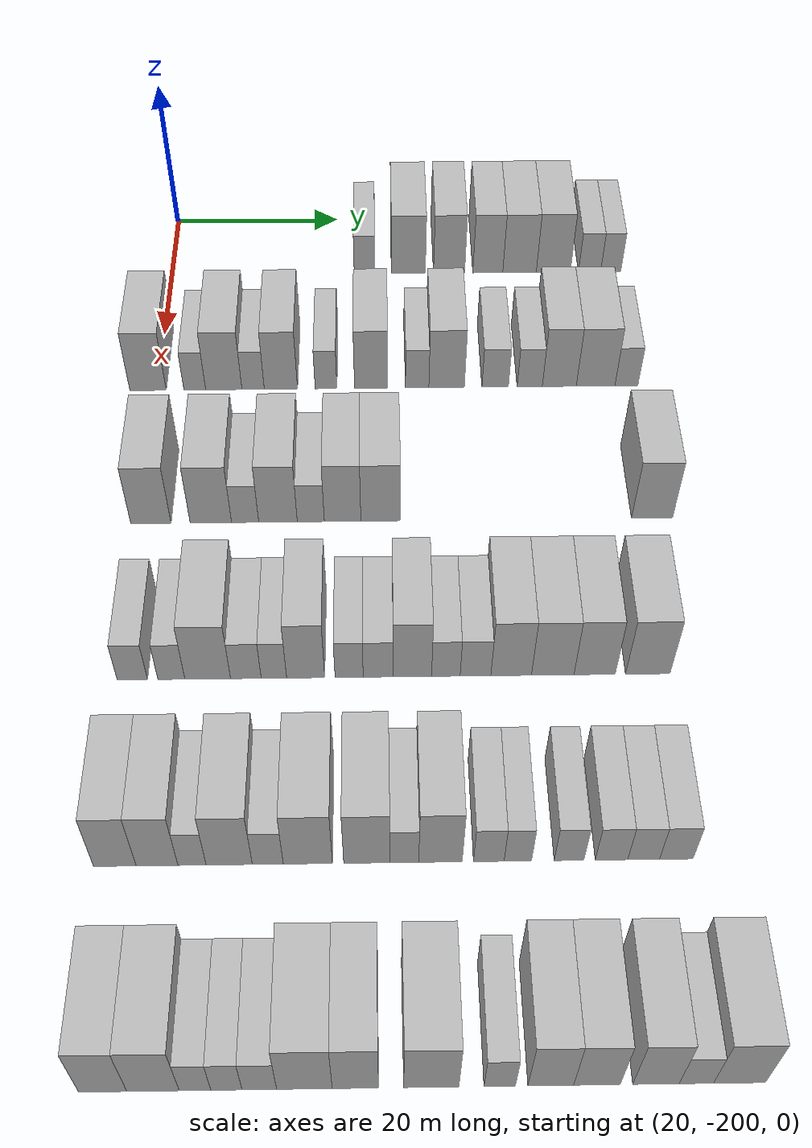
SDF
<sdf version="1.6">
 <world name="default">
  <model name="building_42">
   <static>1</static>
   <pose>25.0000 -176.5753 0 0.000000 0.000000 0.000000</pose>
   <link name="link">
    <pose>0 0 3.00 0 0 0</pose>
    <collision name="collision"><geometry><box><size>10.0000 2.5199 6.0000</size></box></geometry></collision>
    <visual name="visual">
     <cast_shadows>0</cast_shadows>
     <geometry><box><size>10.0000 2.5199 6.0000</size></box></geometry>
     <material>
      <script>
       <uri>model://HANNAS_wall/materials/scripts</uri>
       <uri>model://HANNAS_wall/materials/textures</uri>
       <name>vrc/HANNAS_wall</name>
      </script>
     </material>
    </visual>
   </link>
  </model>
  <model name="building_43">
   <static>1</static>
   <pose>25.0000 -171.2513 0 0.000000 0.000000 0.000000</pose>
   <link name="link">
    <pose>0 0 4.50 0 0 0</pose>
    <collision name="collision"><geometry><box><size>10.0000 4.1281 9.0000</size></box></geometry></collision>
    <visual name="visual">
     <cast_shadows>0</cast_shadows>
     <geometry><box><size>10.0000 4.1281 9.0000</size></box></geometry>
     <material>
      <script>
       <uri>model://HANNAS_wall/materials/scripts</uri>
       <uri>model://HANNAS_wall/materials/textures</uri>
       <name>vrc/HANNAS_wall</name>
      </script>
     </material>
    </visual>
   </link>
  </model>
  <model name="building_44">
   <static>1</static>
   <pose>25.0000 -166.2903 0 0.000000 0.000000 0.000000</pose>
   <link name="link">
    <pose>0 0 4.50 0 0 0</pose>
    <collision name="collision"><geometry><box><size>10.0000 3.7940 9.0000</size></box></geometry></collision>
    <visual name="visual">
     <cast_shadows>0</cast_shadows>
     <geometry><box><size>10.0000 3.7940 9.0000</size></box></geometry>
     <material>
      <script>
       <uri>model://HANNAS_wall/materials/scripts</uri>
       <uri>model://HANNAS_wall/materials/textures</uri>
       <name>vrc/HANNAS_wall</name>
      </script>
     </material>
    </visual>
   </link>
  </model>
  <model name="building_45">
   <static>1</static>
   <pose>25.0000 -161.5689 0 0.000000 0.000000 0.000000</pose>
   <link name="link">
    <pose>0 0 4.50 0 0 0</pose>
    <collision name="collision"><geometry><box><size>10.0000 3.6488 9.0000</size></box></geometry></collision>
    <visual name="visual">
     <cast_shadows>0</cast_shadows>
     <geometry><box><size>10.0000 3.6488 9.0000</size></box></geometry>
     <material>
      <script>
       <uri>model://HANNAS_wall/materials/scripts</uri>
       <uri>model://HANNAS_wall/materials/textures</uri>
       <name>vrc/HANNAS_wall</name>
      </script>
     </material>
    </visual>
   </link>
  </model>
  <model name="building_46">
   <static>1</static>
   <pose>25.0000 -157.6987 0 0.000000 0.000000 0.000000</pose>
   <link name="link">
    <pose>0 0 4.50 0 0 0</pose>
    <collision name="collision"><geometry><box><size>10.0000 4.0915 9.0000</size></box></geometry></collision>
    <visual name="visual">
     <cast_shadows>0</cast_shadows>
     <geometry><box><size>10.0000 4.0915 9.0000</size></box></geometry>
     <material>
      <script>
       <uri>model://HANNAS_wall/materials/scripts</uri>
       <uri>model://HANNAS_wall/materials/textures</uri>
       <name>vrc/HANNAS_wall</name>
      </script>
     </material>
    </visual>
   </link>
  </model>
  <model name="building_47">
   <static>1</static>
   <pose>25.0000 -153.5797 0 0.000000 0.000000 0.000000</pose>
   <link name="link">
    <pose>0 0 4.50 0 0 0</pose>
    <collision name="collision"><geometry><box><size>10.0000 4.1466 9.0000</size></box></geometry></collision>
    <visual name="visual">
     <cast_shadows>0</cast_shadows>
     <geometry><box><size>10.0000 4.1466 9.0000</size></box></geometry>
     <material>
      <script>
       <uri>model://HANNAS_wall/materials/scripts</uri>
       <uri>model://HANNAS_wall/materials/textures</uri>
       <name>vrc/HANNAS_wall</name>
      </script>
     </material>
    </visual>
   </link>
  </model>
  <model name="building_48">
   <static>1</static>
   <pose>25.0000 -149.1497 0 0.000000 0.000000 0.000000</pose>
   <link name="link">
    <pose>0 0 3.00 0 0 0</pose>
    <collision name="collision"><geometry><box><size>10.0000 2.7135 6.0000</size></box></geometry></collision>
    <visual name="visual">
     <cast_shadows>0</cast_shadows>
     <geometry><box><size>10.0000 2.7135 6.0000</size></box></geometry>
     <material>
      <script>
       <uri>model://HANNAS_wall/materials/scripts</uri>
       <uri>model://HANNAS_wall/materials/textures</uri>
       <name>vrc/HANNAS_wall</name>
      </script>
     </material>
    </visual>
   </link>
  </model>
  <model name="building_49">
   <static>1</static>
   <pose>25.0000 -146.5638 0 0.000000 0.000000 0.000000</pose>
   <link name="link">
    <pose>0 0 3.00 0 0 0</pose>
    <collision name="collision"><geometry><box><size>10.0000 2.4584 6.0000</size></box></geometry></collision>
    <visual name="visual">
     <cast_shadows>0</cast_shadows>
     <geometry><box><size>10.0000 2.4584 6.0000</size></box></geometry>
     <material>
      <script>
       <uri>model://HANNAS_wall/materials/scripts</uri>
       <uri>model://HANNAS_wall/materials/textures</uri>
       <name>vrc/HANNAS_wall</name>
      </script>
     </material>
    </visual>
   </link>
  </model>
  <model name="building_201">
   <static>1</static>
   <pose>44.0000 -201.1023 0 0.000000 0.000000 0.000000</pose>
   <link name="link">
    <pose>0 0 4.50 0 0 0</pose>
    <collision name="collision"><geometry><box><size>10.0000 4.1125 9.0000</size></box></geometry></collision>
    <visual name="visual">
     <cast_shadows>0</cast_shadows>
     <geometry><box><size>10.0000 4.1125 9.0000</size></box></geometry>
     <material>
      <script>
       <uri>model://HANNAS_wall/materials/scripts</uri>
       <uri>model://HANNAS_wall/materials/textures</uri>
       <name>vrc/HANNAS_wall</name>
      </script>
     </material>
    </visual>
   </link>
  </model>
  <model name="building_202">
   <static>1</static>
   <pose>44.0000 -195.8199 0 0.000000 0.000000 0.000000</pose>
   <link name="link">
    <pose>0 0 3.00 0 0 0</pose>
    <collision name="collision"><geometry><box><size>10.0000 2.4524 6.0000</size></box></geometry></collision>
    <visual name="visual">
     <cast_shadows>0</cast_shadows>
     <geometry><box><size>10.0000 2.4524 6.0000</size></box></geometry>
     <material>
      <script>
       <uri>model://HANNAS_wall/materials/scripts</uri>
       <uri>model://HANNAS_wall/materials/textures</uri>
       <name>vrc/HANNAS_wall</name>
      </script>
     </material>
    </visual>
   </link>
  </model>
  <model name="building_203">
   <static>1</static>
   <pose>44.0000 -192.5403 0 0.000000 0.000000 0.000000</pose>
   <link name="link">
    <pose>0 0 4.50 0 0 0</pose>
    <collision name="collision"><geometry><box><size>10.0000 4.1068 9.0000</size></box></geometry></collision>
    <visual name="visual">
     <cast_shadows>0</cast_shadows>
     <geometry><box><size>10.0000 4.1068 9.0000</size></box></geometry>
     <material>
      <script>
       <uri>model://HANNAS_wall/materials/scripts</uri>
       <uri>model://HANNAS_wall/materials/textures</uri>
       <name>vrc/HANNAS_wall</name>
      </script>
     </material>
    </visual>
   </link>
  </model>
  <model name="building_204">
   <static>1</static>
   <pose>44.0000 -189.2242 0 0.000000 0.000000 0.000000</pose>
   <link name="link">
    <pose>0 0 3.00 0 0 0</pose>
    <collision name="collision"><geometry><box><size>10.0000 2.5254 6.0000</size></box></geometry></collision>
    <visual name="visual">
     <cast_shadows>0</cast_shadows>
     <geometry><box><size>10.0000 2.5254 6.0000</size></box></geometry>
     <material>
      <script>
       <uri>model://HANNAS_wall/materials/scripts</uri>
       <uri>model://HANNAS_wall/materials/textures</uri>
       <name>vrc/HANNAS_wall</name>
      </script>
     </material>
    </visual>
   </link>
  </model>
  <model name="building_205">
   <static>1</static>
   <pose>44.0000 -186.0772 0 0.000000 0.000000 0.000000</pose>
   <link name="link">
    <pose>0 0 4.50 0 0 0</pose>
    <collision name="collision"><geometry><box><size>10.0000 3.7687 9.0000</size></box></geometry></collision>
    <visual name="visual">
     <cast_shadows>0</cast_shadows>
     <geometry><box><size>10.0000 3.7687 9.0000</size></box></geometry>
     <material>
      <script>
       <uri>model://HANNAS_wall/materials/scripts</uri>
       <uri>model://HANNAS_wall/materials/textures</uri>
       <name>vrc/HANNAS_wall</name>
      </script>
     </material>
    </visual>
   </link>
  </model>
  <model name="building_206">
   <static>1</static>
   <pose>44.0000 -180.9612 0 0.000000 0.000000 0.000000</pose>
   <link name="link">
    <pose>0 0 3.00 0 0 0</pose>
    <collision name="collision"><geometry><box><size>10.0000 2.4632 6.0000</size></box></geometry></collision>
    <visual name="visual">
     <cast_shadows>0</cast_shadows>
     <geometry><box><size>10.0000 2.4632 6.0000</size></box></geometry>
     <material>
      <script>
       <uri>model://HANNAS_wall/materials/scripts</uri>
       <uri>model://HANNAS_wall/materials/textures</uri>
       <name>vrc/HANNAS_wall</name>
      </script>
     </material>
    </visual>
   </link>
  </model>
  <model name="building_207">
   <static>1</static>
   <pose>44.0000 -175.8492 0 0.000000 0.000000 0.000000</pose>
   <link name="link">
    <pose>0 0 4.50 0 0 0</pose>
    <collision name="collision"><geometry><box><size>10.0000 3.7608 9.0000</size></box></geometry></collision>
    <visual name="visual">
     <cast_shadows>0</cast_shadows>
     <geometry><box><size>10.0000 3.7608 9.0000</size></box></geometry>
     <material>
      <script>
       <uri>model://HANNAS_wall/materials/scripts</uri>
       <uri>model://HANNAS_wall/materials/textures</uri>
       <name>vrc/HANNAS_wall</name>
      </script>
     </material>
    </visual>
   </link>
  </model>
  <model name="building_208">
   <static>1</static>
   <pose>44.0000 -170.6443 0 0.000000 0.000000 0.000000</pose>
   <link name="link">
    <pose>0 0 3.00 0 0 0</pose>
    <collision name="collision"><geometry><box><size>10.0000 2.6491 6.0000</size></box></geometry></collision>
    <visual name="visual">
     <cast_shadows>0</cast_shadows>
     <geometry><box><size>10.0000 2.6491 6.0000</size></box></geometry>
     <material>
      <script>
       <uri>model://HANNAS_wall/materials/scripts</uri>
       <uri>model://HANNAS_wall/materials/textures</uri>
       <name>vrc/HANNAS_wall</name>
      </script>
     </material>
    </visual>
   </link>
  </model>
  <model name="building_209">
   <static>1</static>
   <pose>44.0000 -167.3060 0 0.000000 0.000000 0.000000</pose>
   <link name="link">
    <pose>0 0 4.50 0 0 0</pose>
    <collision name="collision"><geometry><box><size>10.0000 4.0276 9.0000</size></box></geometry></collision>
    <visual name="visual">
     <cast_shadows>0</cast_shadows>
     <geometry><box><size>10.0000 4.0276 9.0000</size></box></geometry>
     <material>
      <script>
       <uri>model://HANNAS_wall/materials/scripts</uri>
       <uri>model://HANNAS_wall/materials/textures</uri>
       <name>vrc/HANNAS_wall</name>
      </script>
     </material>
    </visual>
   </link>
  </model>
  <model name="building_210">
   <static>1</static>
   <pose>44.0000 -161.7934 0 0.000000 0.000000 0.000000</pose>
   <link name="link">
    <pose>0 0 3.00 0 0 0</pose>
    <collision name="collision"><geometry><box><size>10.0000 2.9975 6.0000</size></box></geometry></collision>
    <visual name="visual">
     <cast_shadows>0</cast_shadows>
     <geometry><box><size>10.0000 2.9975 6.0000</size></box></geometry>
     <material>
      <script>
       <uri>model://HANNAS_wall/materials/scripts</uri>
       <uri>model://HANNAS_wall/materials/textures</uri>
       <name>vrc/HANNAS_wall</name>
      </script>
     </material>
    </visual>
   </link>
  </model>
  <model name="building_211">
   <static>1</static>
   <pose>44.0000 -157.8687 0 0.000000 0.000000 0.000000</pose>
   <link name="link">
    <pose>0 0 3.00 0 0 0</pose>
    <collision name="collision"><geometry><box><size>10.0000 2.8520 6.0000</size></box></geometry></collision>
    <visual name="visual">
     <cast_shadows>0</cast_shadows>
     <geometry><box><size>10.0000 2.8520 6.0000</size></box></geometry>
     <material>
      <script>
       <uri>model://HANNAS_wall/materials/scripts</uri>
       <uri>model://HANNAS_wall/materials/textures</uri>
       <name>vrc/HANNAS_wall</name>
      </script>
     </material>
    </visual>
   </link>
  </model>
  <model name="building_212">
   <static>1</static>
   <pose>44.0000 -154.5132 0 0.000000 0.000000 0.000000</pose>
   <link name="link">
    <pose>0 0 4.50 0 0 0</pose>
    <collision name="collision"><geometry><box><size>10.0000 3.8590 9.0000</size></box></geometry></collision>
    <visual name="visual">
     <cast_shadows>0</cast_shadows>
     <geometry><box><size>10.0000 3.8590 9.0000</size></box></geometry>
     <material>
      <script>
       <uri>model://HANNAS_wall/materials/scripts</uri>
       <uri>model://HANNAS_wall/materials/textures</uri>
       <name>vrc/HANNAS_wall</name>
      </script>
     </material>
    </visual>
   </link>
  </model>
  <model name="building_213">
   <static>1</static>
   <pose>44.0000 -150.3857 0 0.000000 0.000000 0.000000</pose>
   <link name="link">
    <pose>0 0 4.50 0 0 0</pose>
    <collision name="collision"><geometry><box><size>10.0000 4.3961 9.0000</size></box></geometry></collision>
    <visual name="visual">
     <cast_shadows>0</cast_shadows>
     <geometry><box><size>10.0000 4.3961 9.0000</size></box></geometry>
     <material>
      <script>
       <uri>model://HANNAS_wall/materials/scripts</uri>
       <uri>model://HANNAS_wall/materials/textures</uri>
       <name>vrc/HANNAS_wall</name>
      </script>
     </material>
    </visual>
   </link>
  </model>
  <model name="building_214">
   <static>1</static>
   <pose>44.0000 -146.8827 0 0.000000 0.000000 0.000000</pose>
   <link name="link">
    <pose>0 0 3.00 0 0 0</pose>
    <collision name="collision"><geometry><box><size>10.0000 2.6098 6.0000</size></box></geometry></collision>
    <visual name="visual">
     <cast_shadows>0</cast_shadows>
     <geometry><box><size>10.0000 2.6098 6.0000</size></box></geometry>
     <material>
      <script>
       <uri>model://HANNAS_wall/materials/scripts</uri>
       <uri>model://HANNAS_wall/materials/textures</uri>
       <name>vrc/HANNAS_wall</name>
      </script>
     </material>
    </visual>
   </link>
  </model>
  <model name="building_382">
   <static>1</static>
   <pose>63.0000 -199.0062 0 0.000000 0.000000 0.000000</pose>
   <link name="link">
    <pose>0 0 4.50 0 0 0</pose>
    <collision name="collision"><geometry><box><size>10.0000 4.2186 9.0000</size></box></geometry></collision>
    <visual name="visual">
     <cast_shadows>0</cast_shadows>
     <geometry><box><size>10.0000 4.2186 9.0000</size></box></geometry>
     <material>
      <script>
       <uri>model://HANNAS_wall/materials/scripts</uri>
       <uri>model://HANNAS_wall/materials/textures</uri>
       <name>vrc/HANNAS_wall</name>
      </script>
     </material>
    </visual>
   </link>
  </model>
  <model name="building_383">
   <static>1</static>
   <pose>63.0000 -192.7321 0 0.000000 0.000000 0.000000</pose>
   <link name="link">
    <pose>0 0 4.50 0 0 0</pose>
    <collision name="collision"><geometry><box><size>10.0000 4.3297 9.0000</size></box></geometry></collision>
    <visual name="visual">
     <cast_shadows>0</cast_shadows>
     <geometry><box><size>10.0000 4.3297 9.0000</size></box></geometry>
     <material>
      <script>
       <uri>model://HANNAS_wall/materials/scripts</uri>
       <uri>model://HANNAS_wall/materials/textures</uri>
       <name>vrc/HANNAS_wall</name>
      </script>
     </material>
    </visual>
   </link>
  </model>
  <model name="building_384">
   <static>1</static>
   <pose>63.0000 -189.1444 0 0.000000 0.000000 0.000000</pose>
   <link name="link">
    <pose>0 0 3.00 0 0 0</pose>
    <collision name="collision"><geometry><box><size>10.0000 2.8457 6.0000</size></box></geometry></collision>
    <visual name="visual">
     <cast_shadows>0</cast_shadows>
     <geometry><box><size>10.0000 2.8457 6.0000</size></box></geometry>
     <material>
      <script>
       <uri>model://HANNAS_wall/materials/scripts</uri>
       <uri>model://HANNAS_wall/materials/textures</uri>
       <name>vrc/HANNAS_wall</name>
      </script>
     </material>
    </visual>
   </link>
  </model>
  <model name="building_385">
   <static>1</static>
   <pose>63.0000 -185.7021 0 0.000000 0.000000 0.000000</pose>
   <link name="link">
    <pose>0 0 4.50 0 0 0</pose>
    <collision name="collision"><geometry><box><size>10.0000 4.0390 9.0000</size></box></geometry></collision>
    <visual name="visual">
     <cast_shadows>0</cast_shadows>
     <geometry><box><size>10.0000 4.0390 9.0000</size></box></geometry>
     <material>
      <script>
       <uri>model://HANNAS_wall/materials/scripts</uri>
       <uri>model://HANNAS_wall/materials/textures</uri>
       <name>vrc/HANNAS_wall</name>
      </script>
     </material>
    </visual>
   </link>
  </model>
  <model name="building_386">
   <static>1</static>
   <pose>63.0000 -182.2614 0 0.000000 0.000000 0.000000</pose>
   <link name="link">
    <pose>0 0 3.00 0 0 0</pose>
    <collision name="collision"><geometry><box><size>10.0000 2.8423 6.0000</size></box></geometry></collision>
    <visual name="visual">
     <cast_shadows>0</cast_shadows>
     <geometry><box><size>10.0000 2.8423 6.0000</size></box></geometry>
     <material>
      <script>
       <uri>model://HANNAS_wall/materials/scripts</uri>
       <uri>model://HANNAS_wall/materials/textures</uri>
       <name>vrc/HANNAS_wall</name>
      </script>
     </material>
    </visual>
   </link>
  </model>
  <model name="building_387">
   <static>1</static>
   <pose>63.0000 -178.9250 0 0.000000 0.000000 0.000000</pose>
   <link name="link">
    <pose>0 0 4.50 0 0 0</pose>
    <collision name="collision"><geometry><box><size>10.0000 3.8304 9.0000</size></box></geometry></collision>
    <visual name="visual">
     <cast_shadows>0</cast_shadows>
     <geometry><box><size>10.0000 3.8304 9.0000</size></box></geometry>
     <material>
      <script>
       <uri>model://HANNAS_wall/materials/scripts</uri>
       <uri>model://HANNAS_wall/materials/textures</uri>
       <name>vrc/HANNAS_wall</name>
      </script>
     </material>
    </visual>
   </link>
  </model>
  <model name="building_388">
   <static>1</static>
   <pose>63.0000 -174.9529 0 0.000000 0.000000 0.000000</pose>
   <link name="link">
    <pose>0 0 4.50 0 0 0</pose>
    <collision name="collision"><geometry><box><size>10.0000 4.1138 9.0000</size></box></geometry></collision>
    <visual name="visual">
     <cast_shadows>0</cast_shadows>
     <geometry><box><size>10.0000 4.1138 9.0000</size></box></geometry>
     <material>
      <script>
       <uri>model://HANNAS_wall/materials/scripts</uri>
       <uri>model://HANNAS_wall/materials/textures</uri>
       <name>vrc/HANNAS_wall</name>
      </script>
     </material>
    </visual>
   </link>
  </model>
  <model name="building_389">
   <static>1</static>
   <pose>63.0000 -146.4154 0 0.000000 0.000000 0.000000</pose>
   <link name="link">
    <pose>0 0 4.50 0 0 0</pose>
    <collision name="collision"><geometry><box><size>10.0000 4.3204 9.0000</size></box></geometry></collision>
    <visual name="visual">
     <cast_shadows>0</cast_shadows>
     <geometry><box><size>10.0000 4.3204 9.0000</size></box></geometry>
     <material>
      <script>
       <uri>model://HANNAS_wall/materials/scripts</uri>
       <uri>model://HANNAS_wall/materials/textures</uri>
       <name>vrc/HANNAS_wall</name>
      </script>
     </material>
    </visual>
   </link>
  </model>
  <model name="building_545">
   <static>1</static>
   <pose>82.0000 -199.0154 0 0.000000 0.000000 0.000000</pose>
   <link name="link">
    <pose>0 0 3.00 0 0 0</pose>
    <collision name="collision"><geometry><box><size>10.0000 2.9160 6.0000</size></box></geometry></collision>
    <visual name="visual">
     <cast_shadows>0</cast_shadows>
     <geometry><box><size>10.0000 2.9160 6.0000</size></box></geometry>
     <material>
      <script>
       <uri>model://HANNAS_wall/materials/scripts</uri>
       <uri>model://HANNAS_wall/materials/textures</uri>
       <name>vrc/HANNAS_wall</name>
      </script>
     </material>
    </visual>
   </link>
  </model>
  <model name="building_546">
   <static>1</static>
   <pose>82.0000 -195.2601 0 0.000000 0.000000 0.000000</pose>
   <link name="link">
    <pose>0 0 3.00 0 0 0</pose>
    <collision name="collision"><geometry><box><size>10.0000 2.5946 6.0000</size></box></geometry></collision>
    <visual name="visual">
     <cast_shadows>0</cast_shadows>
     <geometry><box><size>10.0000 2.5946 6.0000</size></box></geometry>
     <material>
      <script>
       <uri>model://HANNAS_wall/materials/scripts</uri>
       <uri>model://HANNAS_wall/materials/textures</uri>
       <name>vrc/HANNAS_wall</name>
      </script>
     </material>
    </visual>
   </link>
  </model>
  <model name="building_547">
   <static>1</static>
   <pose>82.0000 -191.7645 0 0.000000 0.000000 0.000000</pose>
   <link name="link">
    <pose>0 0 4.50 0 0 0</pose>
    <collision name="collision"><geometry><box><size>10.0000 4.3966 9.0000</size></box></geometry></collision>
    <visual name="visual">
     <cast_shadows>0</cast_shadows>
     <geometry><box><size>10.0000 4.3966 9.0000</size></box></geometry>
     <material>
      <script>
       <uri>model://HANNAS_wall/materials/scripts</uri>
       <uri>model://HANNAS_wall/materials/textures</uri>
       <name>vrc/HANNAS_wall</name>
      </script>
     </material>
    </visual>
   </link>
  </model>
  <model name="building_548">
   <static>1</static>
   <pose>82.0000 -188.0903 0 0.000000 0.000000 0.000000</pose>
   <link name="link">
    <pose>0 0 3.00 0 0 0</pose>
    <collision name="collision"><geometry><box><size>10.0000 2.9519 6.0000</size></box></geometry></collision>
    <visual name="visual">
     <cast_shadows>0</cast_shadows>
     <geometry><box><size>10.0000 2.9519 6.0000</size></box></geometry>
     <material>
      <script>
       <uri>model://HANNAS_wall/materials/scripts</uri>
       <uri>model://HANNAS_wall/materials/textures</uri>
       <name>vrc/HANNAS_wall</name>
      </script>
     </material>
    </visual>
   </link>
  </model>
  <model name="building_549">
   <static>1</static>
   <pose>82.0000 -185.3875 0 0.000000 0.000000 0.000000</pose>
   <link name="link">
    <pose>0 0 3.00 0 0 0</pose>
    <collision name="collision"><geometry><box><size>10.0000 2.4536 6.0000</size></box></geometry></collision>
    <visual name="visual">
     <cast_shadows>0</cast_shadows>
     <geometry><box><size>10.0000 2.4536 6.0000</size></box></geometry>
     <material>
      <script>
       <uri>model://HANNAS_wall/materials/scripts</uri>
       <uri>model://HANNAS_wall/materials/textures</uri>
       <name>vrc/HANNAS_wall</name>
      </script>
     </material>
    </visual>
   </link>
  </model>
  <model name="building_550">
   <static>1</static>
   <pose>82.0000 -182.3245 0 0.000000 0.000000 0.000000</pose>
   <link name="link">
    <pose>0 0 4.50 0 0 0</pose>
    <collision name="collision"><geometry><box><size>10.0000 3.6726 9.0000</size></box></geometry></collision>
    <visual name="visual">
     <cast_shadows>0</cast_shadows>
     <geometry><box><size>10.0000 3.6726 9.0000</size></box></geometry>
     <material>
      <script>
       <uri>model://HANNAS_wall/materials/scripts</uri>
       <uri>model://HANNAS_wall/materials/textures</uri>
       <name>vrc/HANNAS_wall</name>
      </script>
     </material>
    </visual>
   </link>
  </model>
  <model name="building_551">
   <static>1</static>
   <pose>82.0000 -178.1329 0 0.000000 0.000000 0.000000</pose>
   <link name="link">
    <pose>0 0 3.00 0 0 0</pose>
    <collision name="collision"><geometry><box><size>10.0000 2.7105 6.0000</size></box></geometry></collision>
    <visual name="visual">
     <cast_shadows>0</cast_shadows>
     <geometry><box><size>10.0000 2.7105 6.0000</size></box></geometry>
     <material>
      <script>
       <uri>model://HANNAS_wall/materials/scripts</uri>
       <uri>model://HANNAS_wall/materials/textures</uri>
       <name>vrc/HANNAS_wall</name>
      </script>
     </material>
    </visual>
   </link>
  </model>
  <model name="building_552">
   <static>1</static>
   <pose>82.0000 -175.3248 0 0.000000 0.000000 0.000000</pose>
   <link name="link">
    <pose>0 0 3.00 0 0 0</pose>
    <collision name="collision"><geometry><box><size>10.0000 2.9057 6.0000</size></box></geometry></collision>
    <visual name="visual">
     <cast_shadows>0</cast_shadows>
     <geometry><box><size>10.0000 2.9057 6.0000</size></box></geometry>
     <material>
      <script>
       <uri>model://HANNAS_wall/materials/scripts</uri>
       <uri>model://HANNAS_wall/materials/textures</uri>
       <name>vrc/HANNAS_wall</name>
      </script>
     </material>
    </visual>
   </link>
  </model>
  <model name="building_553">
   <static>1</static>
   <pose>82.0000 -172.0285 0 0.000000 0.000000 0.000000</pose>
   <link name="link">
    <pose>0 0 4.50 0 0 0</pose>
    <collision name="collision"><geometry><box><size>10.0000 3.6868 9.0000</size></box></geometry></collision>
    <visual name="visual">
     <cast_shadows>0</cast_shadows>
     <geometry><box><size>10.0000 3.6868 9.0000</size></box></geometry>
     <material>
      <script>
       <uri>model://HANNAS_wall/materials/scripts</uri>
       <uri>model://HANNAS_wall/materials/textures</uri>
       <name>vrc/HANNAS_wall</name>
      </script>
     </material>
    </visual>
   </link>
  </model>
  <model name="building_554">
   <static>1</static>
   <pose>82.0000 -168.8038 0 0.000000 0.000000 0.000000</pose>
   <link name="link">
    <pose>0 0 3.00 0 0 0</pose>
    <collision name="collision"><geometry><box><size>10.0000 2.7627 6.0000</size></box></geometry></collision>
    <visual name="visual">
     <cast_shadows>0</cast_shadows>
     <geometry><box><size>10.0000 2.7627 6.0000</size></box></geometry>
     <material>
      <script>
       <uri>model://HANNAS_wall/materials/scripts</uri>
       <uri>model://HANNAS_wall/materials/textures</uri>
       <name>vrc/HANNAS_wall</name>
      </script>
     </material>
    </visual>
   </link>
  </model>
  <model name="building_555">
   <static>1</static>
   <pose>82.0000 -165.9390 0 0.000000 0.000000 0.000000</pose>
   <link name="link">
    <pose>0 0 3.00 0 0 0</pose>
    <collision name="collision"><geometry><box><size>10.0000 2.9669 6.0000</size></box></geometry></collision>
    <visual name="visual">
     <cast_shadows>0</cast_shadows>
     <geometry><box><size>10.0000 2.9669 6.0000</size></box></geometry>
     <material>
      <script>
       <uri>model://HANNAS_wall/materials/scripts</uri>
       <uri>model://HANNAS_wall/materials/textures</uri>
       <name>vrc/HANNAS_wall</name>
      </script>
     </material>
    </visual>
   </link>
  </model>
  <model name="building_556">
   <static>1</static>
   <pose>82.0000 -162.4926 0 0.000000 0.000000 0.000000</pose>
   <link name="link">
    <pose>0 0 4.50 0 0 0</pose>
    <collision name="collision"><geometry><box><size>10.0000 3.9259 9.0000</size></box></geometry></collision>
    <visual name="visual">
     <cast_shadows>0</cast_shadows>
     <geometry><box><size>10.0000 3.9259 9.0000</size></box></geometry>
     <material>
      <script>
       <uri>model://HANNAS_wall/materials/scripts</uri>
       <uri>model://HANNAS_wall/materials/textures</uri>
       <name>vrc/HANNAS_wall</name>
      </script>
     </material>
    </visual>
   </link>
  </model>
  <model name="building_557">
   <static>1</static>
   <pose>82.0000 -158.4723 0 0.000000 0.000000 0.000000</pose>
   <link name="link">
    <pose>0 0 4.50 0 0 0</pose>
    <collision name="collision"><geometry><box><size>10.0000 4.1148 9.0000</size></box></geometry></collision>
    <visual name="visual">
     <cast_shadows>0</cast_shadows>
     <geometry><box><size>10.0000 4.1148 9.0000</size></box></geometry>
     <material>
      <script>
       <uri>model://HANNAS_wall/materials/scripts</uri>
       <uri>model://HANNAS_wall/materials/textures</uri>
       <name>vrc/HANNAS_wall</name>
      </script>
     </material>
    </visual>
   </link>
  </model>
  <model name="building_558">
   <static>1</static>
   <pose>82.0000 -154.4193 0 0.000000 0.000000 0.000000</pose>
   <link name="link">
    <pose>0 0 4.50 0 0 0</pose>
    <collision name="collision"><geometry><box><size>10.0000 3.9913 9.0000</size></box></geometry></collision>
    <visual name="visual">
     <cast_shadows>0</cast_shadows>
     <geometry><box><size>10.0000 3.9913 9.0000</size></box></geometry>
     <material>
      <script>
       <uri>model://HANNAS_wall/materials/scripts</uri>
       <uri>model://HANNAS_wall/materials/textures</uri>
       <name>vrc/HANNAS_wall</name>
      </script>
     </material>
    </visual>
   </link>
  </model>
  <model name="building_559">
   <static>1</static>
   <pose>82.0000 -149.2701 0 0.000000 0.000000 0.000000</pose>
   <link name="link">
    <pose>0 0 4.50 0 0 0</pose>
    <collision name="collision"><geometry><box><size>10.0000 4.3072 9.0000</size></box></geometry></collision>
    <visual name="visual">
     <cast_shadows>0</cast_shadows>
     <geometry><box><size>10.0000 4.3072 9.0000</size></box></geometry>
     <material>
      <script>
       <uri>model://HANNAS_wall/materials/scripts</uri>
       <uri>model://HANNAS_wall/materials/textures</uri>
       <name>vrc/HANNAS_wall</name>
      </script>
     </material>
    </visual>
   </link>
  </model>
  <model name="building_711">
   <static>1</static>
   <pose>101.0000 -198.6298 0 0.000000 0.000000 0.000000</pose>
   <link name="link">
    <pose>0 0 4.50 0 0 0</pose>
    <collision name="collision"><geometry><box><size>10.0000 3.7312 9.0000</size></box></geometry></collision>
    <visual name="visual">
     <cast_shadows>0</cast_shadows>
     <geometry><box><size>10.0000 3.7312 9.0000</size></box></geometry>
     <material>
      <script>
       <uri>model://HANNAS_wall/materials/scripts</uri>
       <uri>model://HANNAS_wall/materials/textures</uri>
       <name>vrc/HANNAS_wall</name>
      </script>
     </material>
    </visual>
   </link>
  </model>
  <model name="building_712">
   <static>1</static>
   <pose>101.0000 -194.9228 0 0.000000 0.000000 0.000000</pose>
   <link name="link">
    <pose>0 0 4.50 0 0 0</pose>
    <collision name="collision"><geometry><box><size>10.0000 3.6829 9.0000</size></box></geometry></collision>
    <visual name="visual">
     <cast_shadows>0</cast_shadows>
     <geometry><box><size>10.0000 3.6829 9.0000</size></box></geometry>
     <material>
      <script>
       <uri>model://HANNAS_wall/materials/scripts</uri>
       <uri>model://HANNAS_wall/materials/textures</uri>
       <name>vrc/HANNAS_wall</name>
      </script>
     </material>
    </visual>
   </link>
  </model>
  <model name="building_713">
   <static>1</static>
   <pose>101.0000 -191.8445 0 0.000000 0.000000 0.000000</pose>
   <link name="link">
    <pose>0 0 3.00 0 0 0</pose>
    <collision name="collision"><geometry><box><size>10.0000 2.4737 6.0000</size></box></geometry></collision>
    <visual name="visual">
     <cast_shadows>0</cast_shadows>
     <geometry><box><size>10.0000 2.4737 6.0000</size></box></geometry>
     <material>
      <script>
       <uri>model://HANNAS_wall/materials/scripts</uri>
       <uri>model://HANNAS_wall/materials/textures</uri>
       <name>vrc/HANNAS_wall</name>
      </script>
     </material>
    </visual>
   </link>
  </model>
  <model name="building_714">
   <static>1</static>
   <pose>101.0000 -188.5761 0 0.000000 0.000000 0.000000</pose>
   <link name="link">
    <pose>0 0 4.50 0 0 0</pose>
    <collision name="collision"><geometry><box><size>10.0000 4.0631 9.0000</size></box></geometry></collision>
    <visual name="visual">
     <cast_shadows>0</cast_shadows>
     <geometry><box><size>10.0000 4.0631 9.0000</size></box></geometry>
     <material>
      <script>
       <uri>model://HANNAS_wall/materials/scripts</uri>
       <uri>model://HANNAS_wall/materials/textures</uri>
       <name>vrc/HANNAS_wall</name>
      </script>
     </material>
    </visual>
   </link>
  </model>
  <model name="building_715">
   <static>1</static>
   <pose>101.0000 -185.1843 0 0.000000 0.000000 0.000000</pose>
   <link name="link">
    <pose>0 0 3.00 0 0 0</pose>
    <collision name="collision"><geometry><box><size>10.0000 2.7205 6.0000</size></box></geometry></collision>
    <visual name="visual">
     <cast_shadows>0</cast_shadows>
     <geometry><box><size>10.0000 2.7205 6.0000</size></box></geometry>
     <material>
      <script>
       <uri>model://HANNAS_wall/materials/scripts</uri>
       <uri>model://HANNAS_wall/materials/textures</uri>
       <name>vrc/HANNAS_wall</name>
      </script>
     </material>
    </visual>
   </link>
  </model>
  <model name="building_716">
   <static>1</static>
   <pose>101.0000 -181.6609 0 0.000000 0.000000 0.000000</pose>
   <link name="link">
    <pose>0 0 4.50 0 0 0</pose>
    <collision name="collision"><geometry><box><size>10.0000 4.3262 9.0000</size></box></geometry></collision>
    <visual name="visual">
     <cast_shadows>0</cast_shadows>
     <geometry><box><size>10.0000 4.3262 9.0000</size></box></geometry>
     <material>
      <script>
       <uri>model://HANNAS_wall/materials/scripts</uri>
       <uri>model://HANNAS_wall/materials/textures</uri>
       <name>vrc/HANNAS_wall</name>
      </script>
     </material>
    </visual>
   </link>
  </model>
  <model name="building_717">
   <static>1</static>
   <pose>101.0000 -176.4672 0 0.000000 0.000000 0.000000</pose>
   <link name="link">
    <pose>0 0 4.50 0 0 0</pose>
    <collision name="collision"><geometry><box><size>10.0000 4.0611 9.0000</size></box></geometry></collision>
    <visual name="visual">
     <cast_shadows>0</cast_shadows>
     <geometry><box><size>10.0000 4.0611 9.0000</size></box></geometry>
     <material>
      <script>
       <uri>model://HANNAS_wall/materials/scripts</uri>
       <uri>model://HANNAS_wall/materials/textures</uri>
       <name>vrc/HANNAS_wall</name>
      </script>
     </material>
    </visual>
   </link>
  </model>
  <model name="building_718">
   <static>1</static>
   <pose>101.0000 -173.1715 0 0.000000 0.000000 0.000000</pose>
   <link name="link">
    <pose>0 0 3.00 0 0 0</pose>
    <collision name="collision"><geometry><box><size>10.0000 2.5302 6.0000</size></box></geometry></collision>
    <visual name="visual">
     <cast_shadows>0</cast_shadows>
     <geometry><box><size>10.0000 2.5302 6.0000</size></box></geometry>
     <material>
      <script>
       <uri>model://HANNAS_wall/materials/scripts</uri>
       <uri>model://HANNAS_wall/materials/textures</uri>
       <name>vrc/HANNAS_wall</name>
      </script>
     </material>
    </visual>
   </link>
  </model>
  <model name="building_719">
   <static>1</static>
   <pose>101.0000 -169.9880 0 0.000000 0.000000 0.000000</pose>
   <link name="link">
    <pose>0 0 4.50 0 0 0</pose>
    <collision name="collision"><geometry><box><size>10.0000 3.8369 9.0000</size></box></geometry></collision>
    <visual name="visual">
     <cast_shadows>0</cast_shadows>
     <geometry><box><size>10.0000 3.8369 9.0000</size></box></geometry>
     <material>
      <script>
       <uri>model://HANNAS_wall/materials/scripts</uri>
       <uri>model://HANNAS_wall/materials/textures</uri>
       <name>vrc/HANNAS_wall</name>
      </script>
     </material>
    </visual>
   </link>
  </model>
  <model name="building_720">
   <static>1</static>
   <pose>101.0000 -165.7201 0 0.000000 0.000000 0.000000</pose>
   <link name="link">
    <pose>0 0 3.00 0 0 0</pose>
    <collision name="collision"><geometry><box><size>10.0000 2.6990 6.0000</size></box></geometry></collision>
    <visual name="visual">
     <cast_shadows>0</cast_shadows>
     <geometry><box><size>10.0000 2.6990 6.0000</size></box></geometry>
     <material>
      <script>
       <uri>model://HANNAS_wall/materials/scripts</uri>
       <uri>model://HANNAS_wall/materials/textures</uri>
       <name>vrc/HANNAS_wall</name>
      </script>
     </material>
    </visual>
   </link>
  </model>
  <model name="building_721">
   <static>1</static>
   <pose>101.0000 -163.1624 0 0.000000 0.000000 0.000000</pose>
   <link name="link">
    <pose>0 0 3.00 0 0 0</pose>
    <collision name="collision"><geometry><box><size>10.0000 2.4163 6.0000</size></box></geometry></collision>
    <visual name="visual">
     <cast_shadows>0</cast_shadows>
     <geometry><box><size>10.0000 2.4163 6.0000</size></box></geometry>
     <material>
      <script>
       <uri>model://HANNAS_wall/materials/scripts</uri>
       <uri>model://HANNAS_wall/materials/textures</uri>
       <name>vrc/HANNAS_wall</name>
      </script>
     </material>
    </visual>
   </link>
  </model>
  <model name="building_722">
   <static>1</static>
   <pose>101.0000 -158.6387 0 0.000000 0.000000 0.000000</pose>
   <link name="link">
    <pose>0 0 3.00 0 0 0</pose>
    <collision name="collision"><geometry><box><size>10.0000 2.6311 6.0000</size></box></geometry></collision>
    <visual name="visual">
     <cast_shadows>0</cast_shadows>
     <geometry><box><size>10.0000 2.6311 6.0000</size></box></geometry>
     <material>
      <script>
       <uri>model://HANNAS_wall/materials/scripts</uri>
       <uri>model://HANNAS_wall/materials/textures</uri>
       <name>vrc/HANNAS_wall</name>
      </script>
     </material>
    </visual>
   </link>
  </model>
  <model name="building_723">
   <static>1</static>
   <pose>101.0000 -154.8897 0 0.000000 0.000000 0.000000</pose>
   <link name="link">
    <pose>0 0 3.00 0 0 0</pose>
    <collision name="collision"><geometry><box><size>10.0000 2.8669 6.0000</size></box></geometry></collision>
    <visual name="visual">
     <cast_shadows>0</cast_shadows>
     <geometry><box><size>10.0000 2.8669 6.0000</size></box></geometry>
     <material>
      <script>
       <uri>model://HANNAS_wall/materials/scripts</uri>
       <uri>model://HANNAS_wall/materials/textures</uri>
       <name>vrc/HANNAS_wall</name>
      </script>
     </material>
    </visual>
   </link>
  </model>
  <model name="building_724">
   <static>1</static>
   <pose>101.0000 -152.0468 0 0.000000 0.000000 0.000000</pose>
   <link name="link">
    <pose>0 0 3.00 0 0 0</pose>
    <collision name="collision"><geometry><box><size>10.0000 2.8189 6.0000</size></box></geometry></collision>
    <visual name="visual">
     <cast_shadows>0</cast_shadows>
     <geometry><box><size>10.0000 2.8189 6.0000</size></box></geometry>
     <material>
      <script>
       <uri>model://HANNAS_wall/materials/scripts</uri>
       <uri>model://HANNAS_wall/materials/textures</uri>
       <name>vrc/HANNAS_wall</name>
      </script>
     </material>
    </visual>
   </link>
  </model>
  <model name="building_725">
   <static>1</static>
   <pose>101.0000 -149.1583 0 0.000000 0.000000 0.000000</pose>
   <link name="link">
    <pose>0 0 3.00 0 0 0</pose>
    <collision name="collision"><geometry><box><size>10.0000 2.9581 6.0000</size></box></geometry></collision>
    <visual name="visual">
     <cast_shadows>0</cast_shadows>
     <geometry><box><size>10.0000 2.9581 6.0000</size></box></geometry>
     <material>
      <script>
       <uri>model://HANNAS_wall/materials/scripts</uri>
       <uri>model://HANNAS_wall/materials/textures</uri>
       <name>vrc/HANNAS_wall</name>
      </script>
     </material>
    </visual>
   </link>
  </model>
  <model name="building_895">
   <static>1</static>
   <pose>120.0000 -197.5111 0 0.000000 0.000000 0.000000</pose>
   <link name="link">
    <pose>0 0 4.50 0 0 0</pose>
    <collision name="collision"><geometry><box><size>10.0000 3.8307 9.0000</size></box></geometry></collision>
    <visual name="visual">
     <cast_shadows>0</cast_shadows>
     <geometry><box><size>10.0000 3.8307 9.0000</size></box></geometry>
     <material>
      <script>
       <uri>model://HANNAS_wall/materials/scripts</uri>
       <uri>model://HANNAS_wall/materials/textures</uri>
       <name>vrc/HANNAS_wall</name>
      </script>
     </material>
    </visual>
   </link>
  </model>
  <model name="building_896">
   <static>1</static>
   <pose>120.0000 -193.5128 0 0.000000 0.000000 0.000000</pose>
   <link name="link">
    <pose>0 0 4.50 0 0 0</pose>
    <collision name="collision"><geometry><box><size>10.0000 4.1657 9.0000</size></box></geometry></collision>
    <visual name="visual">
     <cast_shadows>0</cast_shadows>
     <geometry><box><size>10.0000 4.1657 9.0000</size></box></geometry>
     <material>
      <script>
       <uri>model://HANNAS_wall/materials/scripts</uri>
       <uri>model://HANNAS_wall/materials/textures</uri>
       <name>vrc/HANNAS_wall</name>
      </script>
     </material>
    </visual>
   </link>
  </model>
  <model name="building_897">
   <static>1</static>
   <pose>120.0000 -190.1679 0 0.000000 0.000000 0.000000</pose>
   <link name="link">
    <pose>0 0 3.00 0 0 0</pose>
    <collision name="collision"><geometry><box><size>10.0000 2.5242 6.0000</size></box></geometry></collision>
    <visual name="visual">
     <cast_shadows>0</cast_shadows>
     <geometry><box><size>10.0000 2.5242 6.0000</size></box></geometry>
     <material>
      <script>
       <uri>model://HANNAS_wall/materials/scripts</uri>
       <uri>model://HANNAS_wall/materials/textures</uri>
       <name>vrc/HANNAS_wall</name>
      </script>
     </material>
    </visual>
   </link>
  </model>
  <model name="building_898">
   <static>1</static>
   <pose>120.0000 -187.6694 0 0.000000 0.000000 0.000000</pose>
   <link name="link">
    <pose>0 0 3.00 0 0 0</pose>
    <collision name="collision"><geometry><box><size>10.0000 2.4728 6.0000</size></box></geometry></collision>
    <visual name="visual">
     <cast_shadows>0</cast_shadows>
     <geometry><box><size>10.0000 2.4728 6.0000</size></box></geometry>
     <material>
      <script>
       <uri>model://HANNAS_wall/materials/scripts</uri>
       <uri>model://HANNAS_wall/materials/textures</uri>
       <name>vrc/HANNAS_wall</name>
      </script>
     </material>
    </visual>
   </link>
  </model>
  <model name="building_899">
   <static>1</static>
   <pose>120.0000 -185.0590 0 0.000000 0.000000 0.000000</pose>
   <link name="link">
    <pose>0 0 3.00 0 0 0</pose>
    <collision name="collision"><geometry><box><size>10.0000 2.7480 6.0000</size></box></geometry></collision>
    <visual name="visual">
     <cast_shadows>0</cast_shadows>
     <geometry><box><size>10.0000 2.7480 6.0000</size></box></geometry>
     <material>
      <script>
       <uri>model://HANNAS_wall/materials/scripts</uri>
       <uri>model://HANNAS_wall/materials/textures</uri>
       <name>vrc/HANNAS_wall</name>
      </script>
     </material>
    </visual>
   </link>
  </model>
  <model name="building_900">
   <static>1</static>
   <pose>120.0000 -181.4727 0 0.000000 0.000000 0.000000</pose>
   <link name="link">
    <pose>0 0 4.50 0 0 0</pose>
    <collision name="collision"><geometry><box><size>10.0000 4.4246 9.0000</size></box></geometry></collision>
    <visual name="visual">
     <cast_shadows>0</cast_shadows>
     <geometry><box><size>10.0000 4.4246 9.0000</size></box></geometry>
     <material>
      <script>
       <uri>model://HANNAS_wall/materials/scripts</uri>
       <uri>model://HANNAS_wall/materials/textures</uri>
       <name>vrc/HANNAS_wall</name>
      </script>
     </material>
    </visual>
   </link>
  </model>
  <model name="building_901">
   <static>1</static>
   <pose>120.0000 -177.4188 0 0.000000 0.000000 0.000000</pose>
   <link name="link">
    <pose>0 0 4.50 0 0 0</pose>
    <collision name="collision"><geometry><box><size>10.0000 3.6831 9.0000</size></box></geometry></collision>
    <visual name="visual">
     <cast_shadows>0</cast_shadows>
     <geometry><box><size>10.0000 3.6831 9.0000</size></box></geometry>
     <material>
      <script>
       <uri>model://HANNAS_wall/materials/scripts</uri>
       <uri>model://HANNAS_wall/materials/textures</uri>
       <name>vrc/HANNAS_wall</name>
      </script>
     </material>
    </visual>
   </link>
  </model>
  <model name="building_902">
   <static>1</static>
   <pose>120.0000 -171.3757 0 0.000000 0.000000 0.000000</pose>
   <link name="link">
    <pose>0 0 4.50 0 0 0</pose>
    <collision name="collision"><geometry><box><size>10.0000 4.4031 9.0000</size></box></geometry></collision>
    <visual name="visual">
     <cast_shadows>0</cast_shadows>
     <geometry><box><size>10.0000 4.4031 9.0000</size></box></geometry>
     <material>
      <script>
       <uri>model://HANNAS_wall/materials/scripts</uri>
       <uri>model://HANNAS_wall/materials/textures</uri>
       <name>vrc/HANNAS_wall</name>
      </script>
     </material>
    </visual>
   </link>
  </model>
  <model name="building_903">
   <static>1</static>
   <pose>120.0000 -165.9198 0 0.000000 0.000000 0.000000</pose>
   <link name="link">
    <pose>0 0 3.00 0 0 0</pose>
    <collision name="collision"><geometry><box><size>10.0000 2.5088 6.0000</size></box></geometry></collision>
    <visual name="visual">
     <cast_shadows>0</cast_shadows>
     <geometry><box><size>10.0000 2.5088 6.0000</size></box></geometry>
     <material>
      <script>
       <uri>model://HANNAS_wall/materials/scripts</uri>
       <uri>model://HANNAS_wall/materials/textures</uri>
       <name>vrc/HANNAS_wall</name>
      </script>
     </material>
    </visual>
   </link>
  </model>
  <model name="building_904">
   <static>1</static>
   <pose>120.0000 -161.8418 0 0.000000 0.000000 0.000000</pose>
   <link name="link">
    <pose>0 0 4.50 0 0 0</pose>
    <collision name="collision"><geometry><box><size>10.0000 3.6470 9.0000</size></box></geometry></collision>
    <visual name="visual">
     <cast_shadows>0</cast_shadows>
     <geometry><box><size>10.0000 3.6470 9.0000</size></box></geometry>
     <material>
      <script>
       <uri>model://HANNAS_wall/materials/scripts</uri>
       <uri>model://HANNAS_wall/materials/textures</uri>
       <name>vrc/HANNAS_wall</name>
      </script>
     </material>
    </visual>
   </link>
  </model>
  <model name="building_905">
   <static>1</static>
   <pose>120.0000 -158.1563 0 0.000000 0.000000 0.000000</pose>
   <link name="link">
    <pose>0 0 4.50 0 0 0</pose>
    <collision name="collision"><geometry><box><size>10.0000 3.7240 9.0000</size></box></geometry></collision>
    <visual name="visual">
     <cast_shadows>0</cast_shadows>
     <geometry><box><size>10.0000 3.7240 9.0000</size></box></geometry>
     <material>
      <script>
       <uri>model://HANNAS_wall/materials/scripts</uri>
       <uri>model://HANNAS_wall/materials/textures</uri>
       <name>vrc/HANNAS_wall</name>
      </script>
     </material>
    </visual>
   </link>
  </model>
  <model name="building_906">
   <static>1</static>
   <pose>120.0000 -153.4341 0 0.000000 0.000000 0.000000</pose>
   <link name="link">
    <pose>0 0 4.50 0 0 0</pose>
    <collision name="collision"><geometry><box><size>10.0000 3.7204 9.0000</size></box></geometry></collision>
    <visual name="visual">
     <cast_shadows>0</cast_shadows>
     <geometry><box><size>10.0000 3.7204 9.0000</size></box></geometry>
     <material>
      <script>
       <uri>model://HANNAS_wall/materials/scripts</uri>
       <uri>model://HANNAS_wall/materials/textures</uri>
       <name>vrc/HANNAS_wall</name>
      </script>
     </material>
    </visual>
   </link>
  </model>
  <model name="building_907">
   <static>1</static>
   <pose>120.0000 -150.2028 0 0.000000 0.000000 0.000000</pose>
   <link name="link">
    <pose>0 0 3.00 0 0 0</pose>
    <collision name="collision"><geometry><box><size>10.0000 2.7422 6.0000</size></box></geometry></collision>
    <visual name="visual">
     <cast_shadows>0</cast_shadows>
     <geometry><box><size>10.0000 2.7422 6.0000</size></box></geometry>
     <material>
      <script>
       <uri>model://HANNAS_wall/materials/scripts</uri>
       <uri>model://HANNAS_wall/materials/textures</uri>
       <name>vrc/HANNAS_wall</name>
      </script>
     </material>
    </visual>
   </link>
  </model>
  <model name="building_908">
   <static>1</static>
   <pose>120.0000 -146.7510 0 0.000000 0.000000 0.000000</pose>
   <link name="link">
    <pose>0 0 4.50 0 0 0</pose>
    <collision name="collision"><geometry><box><size>10.0000 4.1614 9.0000</size></box></geometry></collision>
    <visual name="visual">
     <cast_shadows>0</cast_shadows>
     <geometry><box><size>10.0000 4.1614 9.0000</size></box></geometry>
     <material>
      <script>
       <uri>model://HANNAS_wall/materials/scripts</uri>
       <uri>model://HANNAS_wall/materials/textures</uri>
       <name>vrc/HANNAS_wall</name>
      </script>
     </material>
    </visual>
   </link>
  </model>
 </world>
</sdf>
